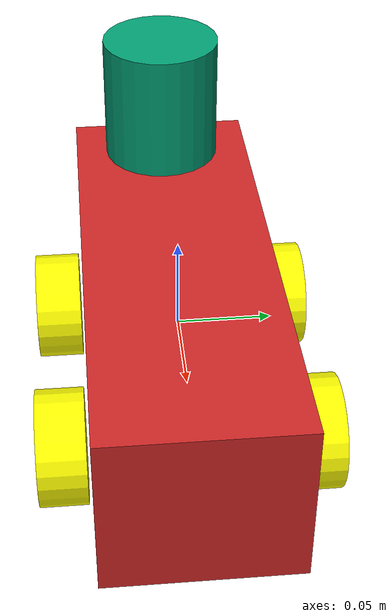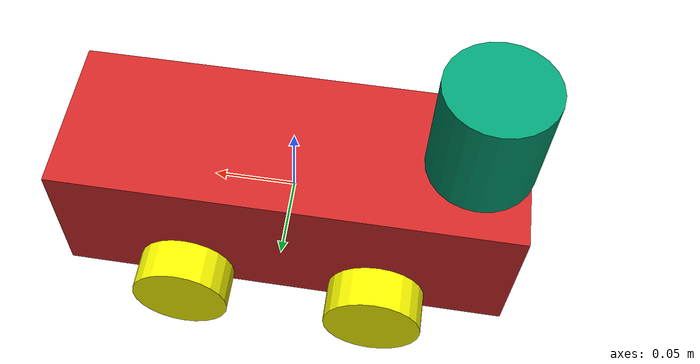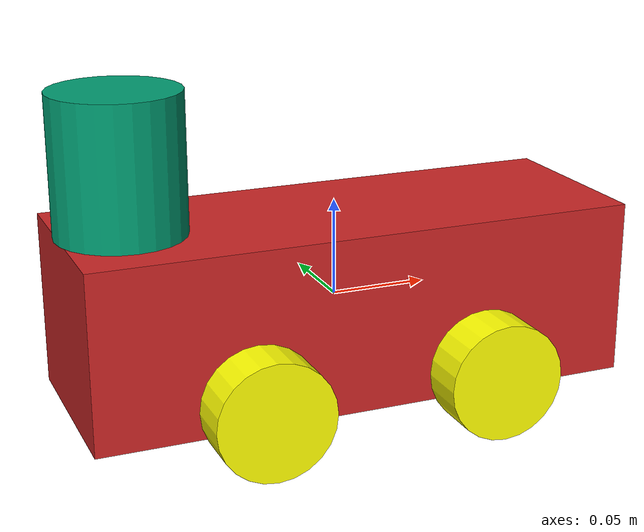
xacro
<?xml version="1.0"?>

<robot name="frederick" xmlns:xacro="http://www.ros.org/wiki/xacro">

<!-- Body dimensions -->
<xacro:property name="base_link_x_dim" value="0.28"/>
<xacro:property name="base_link_y_dim" value="0.10"/>
<xacro:property name="base_link_z_dim" value="0.09"/>
<xacro:property name="body_mass" value="0.5"/>

<!-- Wheel dimensions -->
<xacro:property name="wheel_link_radius" value="0.03"/>
<xacro:property name="wheel_link_length" value="0.025"/>
<xacro:property name="wheel_link_z_location" value="-0.03"/>
<xacro:property name="wheel_mass" value="0.05"/>

<!-- Pi constant -->
<xacro:property name="pi_const" value="3.14159265"/>

<!-- Moments of inertia of wheel -->
<xacro:property name="Iz_wheel" value="${0.5*wheel_mass*wheel_link_radius*wheel_link_radius}"/>
<xacro:property name="I_wheel" value="${(1.0/12.0)*wheel_mass*(3.0*wheel_link_radius*wheel_link_radius+wheel_link_length*wheel_link_length)}"/>

<xacro:macro name="inertia_wheel">
    <inertial>
        <origin rpy="0 0 0" xyz="0 0 0"/>
        <mass value="${wheel_mass}"/>
        <inertia ixx="${I_wheel}" ixy="0.0" ixz="0.0" iyy="${I_wheel}" iyz="0" izz="${Iz_wheel}"/>
    </inertial>
</xacro:macro>

<xacro:include filename="$(find frederick_model_pkg)/urdf/robot.gazebo" />

<!-- Dummy link-->
<link name="dummy"></link>
<joint name="dummy_joint" type="fixed">
	<parent link="dummy"/>
	<child link="base_link"/>
</joint>

<!-- Robot dimensions -->
<!-- Body Link -->
<link name="base_link">
    <visual>
        <geometry>
            <box size="${base_link_x_dim} ${base_link_y_dim} ${base_link_z_dim}"/>
        </geometry>
        <origin xyz="0 0 0" rpy="0 0 0"/>
    </visual>
    <collision>
        <geometry>
            <box size="${base_link_x_dim} ${base_link_y_dim} ${base_link_z_dim}"/>
        </geometry>
        <origin xyz="0 0 0" rpy="0 0 0"/>
    </collision>
    <inertial>
        <origin rpy="0 0 0" xyz="0 0 0"/>
        <mass value="${body_mass}"/>
        <inertia
            ixx="${(1/12) * body_mass * (base_link_y_dim*base_link_y_dim + base_link_z_dim*base_link_z_dim)}"
            ixy="0"
            ixz="0"
            iyy="${(1/12) * body_mass * (base_link_x_dim*base_link_x_dim + base_link_z_dim*base_link_z_dim)}"
            iyz="0"
            izz="${(1/12) * body_mass * (base_link_y_dim*base_link_y_dim + base_link_x_dim*base_link_x_dim)}"/>
    </inertial>
</link>

<!-- Example snippet to add RPLidar to URDF -->
<link name="rplidar_link">
  <visual>
    <geometry>
      <cylinder length="0.07" radius="0.0325"/>
    </geometry>
  </visual>
  <inertial>
    <mass value="0.17"/>
    <inertia ixx="0.1" ixy="0" ixz="0" iyy="0.1" iyz="0" izz="0.1"/>
  </inertial>
</link>

<joint name="rplidar_joint" type="fixed">
  <parent link="base_link"/>  <!-- Adjust base_link to where you want to attach the lidar -->
  <child link="rplidar_link"/>
  <origin xyz="-0.11 0 0.08" rpy="0 0 0"/>  <!-- Adjust position and orientation as needed -->
</joint>

<!-- Wheels -->
<!-- Rear right wheel-->
<joint name="wheel1_joint" type="continuous">
	<parent link="base_link"/>
        <child link="wheel1_link"/>
        <origin xyz="-0.06 -0.065 -0.03" rpy="0 0 0"/>
        <axis xyz="0 1 0"/>
        <limit effort="1000" velocity="1000"/>
        <dynamics damping="1.0" friction="1.0"/>
</joint>
<link name="wheel1_link">
        <visual>
            <origin rpy="1.570795 0 0" xyz="0 0 0"/>
            <geometry>
                <cylinder length="0.025" radius="0.03"/>
            </geometry>
            <material name="yellow">
                <color rgba="1 1 0 1"/>
            </material>
	</visual>
	<collision>
            <origin rpy="1.570795 0 0" xyz="0 0 0"/>
            <geometry>
                <cylinder length="0.025" radius="0.03"/>
            </geometry>
	</collision>
	<xacro:inertia_wheel />
</link>

<!-- Rear left wheel -->
<joint name="wheel2_joint" type="continuous">
	<parent link="base_link"/>
        <child link="wheel2_link"/>
        <origin xyz="-0.06 0.065 -0.03" rpy="0 0 0"/>
        <axis xyz="0 1 0"/>
        <limit effort="1000" velocity="1000"/>
        <dynamics damping="1.0" friction="1.0"/>
</joint>
<link name="wheel2_link">
        <visual>
            <origin rpy="1.570795 0 0" xyz="0 0 0"/>
            <geometry>
                <cylinder length="0.025" radius="0.03"/>
            </geometry>
            <material name="yellow">
                <color rgba="1 1 0 1"/>
            </material>
	</visual>
	<collision>
            <origin rpy="1.570795 0 0" xyz="0 0 0"/>
            <geometry>
                <cylinder length="0.025" radius="0.03"/>
            </geometry>
	</collision>
	<xacro:inertia_wheel />
</link>

<!-- Front right wheel -->
<joint name="wheel3_joint" type="continuous">
	<parent link="base_link"/>
        <child link="wheel3_link"/>
        <origin xyz="0.06 -0.065 -0.03" rpy="0 0 0"/>
        <axis xyz="0 1 0"/>
        <limit effort="1000" velocity="1000"/>
        <dynamics damping="1.0" friction="1.0"/>
</joint>
<link name="wheel3_link">
        <visual>
            <origin rpy="1.570795 0 0" xyz="0 0 0"/>
            <geometry>
                <cylinder length="0.025" radius="0.03"/>
            </geometry>
            <material name="yellow">
                <color rgba="1 1 0 1"/>
            </material>
	</visual>
	<collision>
            <origin rpy="1.570795 0 0" xyz="0 0 0"/>
            <geometry>
                <cylinder length="0.025" radius="0.03"/>
            </geometry>
	</collision>
	<xacro:inertia_wheel />
</link>

<!-- Front left wheel -->
<joint name="wheel4_joint" type="continuous">
	<parent link="base_link"/>
        <child link="wheel4_link"/>
        <origin xyz="0.06 0.065 -0.03" rpy="0 0 0"/>
        <axis xyz="0 1 0"/>
        <limit effort="1000" velocity="1000"/>
        <dynamics damping="1.0" friction="1.0"/>
</joint>
<link name="wheel4_link">
        <visual>
            <origin rpy="1.570795 0 0" xyz="0 0 0"/>
            <geometry>
                <cylinder length="0.025" radius="0.03"/>
            </geometry>
            <material name="yellow">
                <color rgba="1 1 0 1"/>
            </material>
	</visual>
	<collision>
            <origin rpy="1.570795 0 0" xyz="0 0 0"/>
            <geometry>
                <cylinder length="0.025" radius="0.03"/>
            </geometry>
	</collision>
	<xacro:inertia_wheel />
</link>

</robot>
